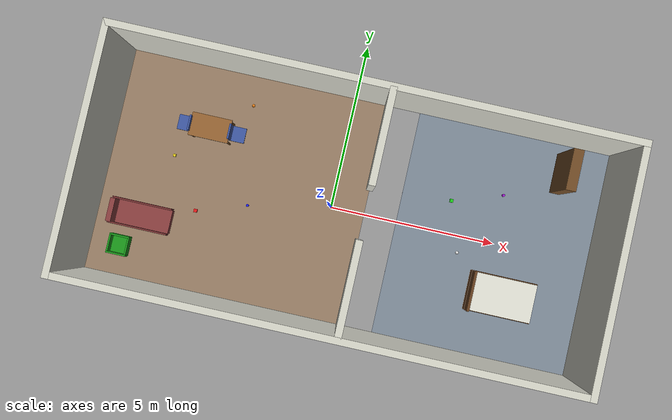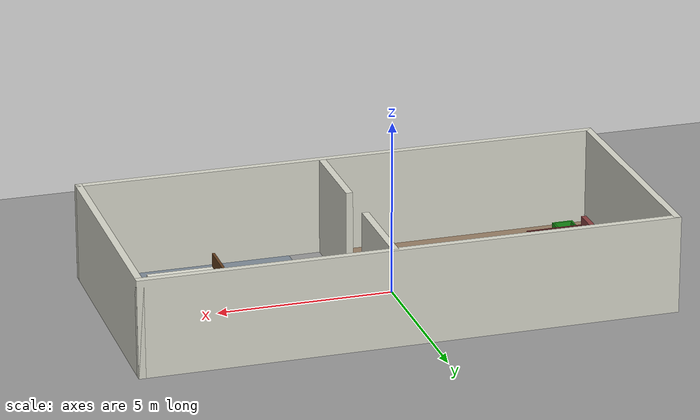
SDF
<?xml version="1.0" ?>
<sdf version="1.8">
  <world name="home_world">

    <!-- Physics -->
    <gravity>0 0 -9.81</gravity>
    <physics name="default_physics" type="ode">
      <max_step_size>0.001</max_step_size>
      <real_time_factor>1.0</real_time_factor>
      <real_time_update_rate>1000</real_time_update_rate>
      <ode>
        <solver>
          <type>quick</type>
          <iters>50</iters>
        </solver>
      </ode>
    </physics>

    <!-- Scene / Ambient lighting -->
    <scene>
      <ambient>0.4 0.4 0.4 1</ambient>
      <background>0.7 0.7 0.7 1</background>
      <shadows>true</shadows>
    </scene>

    <!-- Directional sun light -->
    <light type="directional" name="sun">
      <cast_shadows>true</cast_shadows>
      <pose>0 0 10 0 0 0</pose>
      <diffuse>0.8 0.8 0.8 1</diffuse>
      <specular>0.2 0.2 0.2 1</specular>
      <direction>-0.5 0.1 -0.9</direction>
    </light>

    <!-- Required plugins -->
    <plugin filename="gz-sim-physics-system" name="gz::sim::systems::Physics"/>
    <plugin filename="gz-sim-scene-broadcaster-system" name="gz::sim::systems::SceneBroadcaster"/>
    <plugin filename="gz-sim-sensors-system" name="gz::sim::systems::Sensors"/>
    <plugin filename="gz-sim-contact-system" name="gz::sim::systems::Contact"/>
    <plugin filename="gz-sim-user-commands-system" name="gz::sim::systems::UserCommands"/>

    <!-- ============================================================
         GROUND PLANE
    ============================================================ -->
    <model name="ground_plane">
      <static>true</static>
      <link name="link">
        <collision name="collision">
          <geometry>
            <plane>
              <normal>0 0 1</normal>
              <size>50 50</size>
            </plane>
          </geometry>
          <surface>
            <friction>
              <ode>
                <mu>0.8</mu>
                <mu2>0.8</mu2>
              </ode>
            </friction>
          </surface>
        </collision>
        <visual name="visual">
          <geometry>
            <plane>
              <normal>0 0 1</normal>
              <size>50 50</size>
            </plane>
          </geometry>
          <material>
            <ambient>0.6 0.6 0.6 1</ambient>
            <diffuse>0.6 0.6 0.6 1</diffuse>
          </material>
        </visual>
      </link>
    </model>

    <!-- ============================================================
         ROOM 1 FLOOR TILE (living room) — centred at (-3, 0)
    ============================================================ -->
    <model name="room1_floor">
      <static>true</static>
      <pose>-3 0 0.001 0 0 0</pose>
      <link name="link">
        <visual name="visual">
          <geometry><box><size>8 7 0.001</size></box></geometry>
          <material>
            <ambient>0.55 0.45 0.35 1</ambient>
            <diffuse>0.60 0.50 0.40 1</diffuse>
          </material>
        </visual>
      </link>
    </model>

    <!-- ============================================================
         ROOM 2 FLOOR TILE (bedroom) — centred at (5, 0)
    ============================================================ -->
    <model name="room2_floor">
      <static>true</static>
      <pose>5 0 0.001 0 0 0</pose>
      <link name="link">
        <visual name="visual">
          <geometry><box><size>6 7 0.001</size></box></geometry>
          <material>
            <ambient>0.45 0.50 0.55 1</ambient>
            <diffuse>0.50 0.55 0.60 1</diffuse>
          </material>
        </visual>
      </link>
    </model>

    <!-- South outer wall (y = -3.5), full width -->
    <model name="wall_south">
      <static>true</static>
      <pose>0.5 -3.5 1.4 0 0 0</pose>
      <link name="link">
        <collision name="col"><geometry><box><size>15.2 0.2 2.8</size></box></geometry></collision>
        <visual name="vis">
          <geometry><box><size>15.2 0.2 2.8</size></box></geometry>
          <material><ambient>0.85 0.85 0.80 1</ambient><diffuse>0.85 0.85 0.80 1</diffuse></material>
        </visual>
      </link>
    </model>

    <!-- North outer wall (y = 3.5), full width -->
    <model name="wall_north">
      <static>true</static>
      <pose>0.5 3.5 1.4 0 0 0</pose>
      <link name="link">
        <collision name="col"><geometry><box><size>15.2 0.2 2.8</size></box></geometry></collision>
        <visual name="vis">
          <geometry><box><size>15.2 0.2 2.8</size></box></geometry>
          <material><ambient>0.85 0.85 0.80 1</ambient><diffuse>0.85 0.85 0.80 1</diffuse></material>
        </visual>
      </link>
    </model>

    <!-- West outer wall (x = -7) -->
    <model name="wall_west">
      <static>true</static>
      <pose>-7 0 1.4 0 0 0</pose>
      <link name="link">
        <collision name="col"><geometry><box><size>0.2 7.2 2.8</size></box></geometry></collision>
        <visual name="vis">
          <geometry><box><size>0.2 7.2 2.8</size></box></geometry>
          <material><ambient>0.85 0.85 0.80 1</ambient><diffuse>0.85 0.85 0.80 1</diffuse></material>
        </visual>
      </link>
    </model>

    <!-- East outer wall (x = 8) -->
    <model name="wall_east">
      <static>true</static>
      <pose>8 0 1.4 0 0 0</pose>
      <link name="link">
        <collision name="col"><geometry><box><size>0.2 7.2 2.8</size></box></geometry></collision>
        <visual name="vis">
          <geometry><box><size>0.2 7.2 2.8</size></box></geometry>
          <material><ambient>0.85 0.85 0.80 1</ambient><diffuse>0.85 0.85 0.80 1</diffuse></material>
        </visual>
      </link>
    </model>

    <!-- Interior wall segment north of doorway (x=1, y from 0.75 to 3.5) -->
    <model name="wall_interior_north">
      <static>true</static>
      <pose>1 2.125 1.4 0 0 0</pose>
      <link name="link">
        <collision name="col"><geometry><box><size>0.2 2.75 2.8</size></box></geometry></collision>
        <visual name="vis">
          <geometry><box><size>0.2 2.75 2.8</size></box></geometry>
          <material><ambient>0.85 0.85 0.80 1</ambient><diffuse>0.85 0.85 0.80 1</diffuse></material>
        </visual>
      </link>
    </model>

    <!-- Interior wall segment south of doorway (x=1, y from -3.5 to -0.75) -->
    <model name="wall_interior_south">
      <static>true</static>
      <pose>1 -2.125 1.4 0 0 0</pose>
      <link name="link">
        <collision name="col"><geometry><box><size>0.2 2.75 2.8</size></box></geometry></collision>
        <visual name="vis">
          <geometry><box><size>0.2 2.75 2.8</size></box></geometry>
          <material><ambient>0.85 0.85 0.80 1</ambient><diffuse>0.85 0.85 0.80 1</diffuse></material>
        </visual>
      </link>
    </model>

    <!-- ============================================================
         FURNITURE — Room 1 (Living Room)
    ============================================================ -->

    <!-- Table top -->
    <model name="table">
      <static>true</static>
      <pose>-4 1.5 0.75 0 0 0</pose>
      <link name="link">
        <collision name="top_col"><geometry><box><size>1.2 0.7 0.05</size></box></geometry></collision>
        <visual name="top_vis">
          <geometry><box><size>1.2 0.7 0.05</size></box></geometry>
          <material><ambient>0.55 0.35 0.15 1</ambient><diffuse>0.60 0.40 0.20 1</diffuse></material>
        </visual>
        <!-- Leg FL -->
        <visual name="leg_fl">
          <pose>0.55 0.30 -0.375 0 0 0</pose>
          <geometry><cylinder><radius>0.03</radius><length>0.75</length></cylinder></geometry>
          <material><ambient>0.4 0.25 0.1 1</ambient><diffuse>0.4 0.25 0.1 1</diffuse></material>
        </visual>
        <!-- Leg FR -->
        <visual name="leg_fr">
          <pose>0.55 -0.30 -0.375 0 0 0</pose>
          <geometry><cylinder><radius>0.03</radius><length>0.75</length></cylinder></geometry>
          <material><ambient>0.4 0.25 0.1 1</ambient><diffuse>0.4 0.25 0.1 1</diffuse></material>
        </visual>
        <!-- Leg BL -->
        <visual name="leg_bl">
          <pose>-0.55 0.30 -0.375 0 0 0</pose>
          <geometry><cylinder><radius>0.03</radius><length>0.75</length></cylinder></geometry>
          <material><ambient>0.4 0.25 0.1 1</ambient><diffuse>0.4 0.25 0.1 1</diffuse></material>
        </visual>
        <!-- Leg BR -->
        <visual name="leg_br">
          <pose>-0.55 -0.30 -0.375 0 0 0</pose>
          <geometry><cylinder><radius>0.03</radius><length>0.75</length></cylinder></geometry>
          <material><ambient>0.4 0.25 0.1 1</ambient><diffuse>0.4 0.25 0.1 1</diffuse></material>
        </visual>
        <!-- Table collision legs (simplified) -->
        <collision name="legs_col">
          <pose>0 0 -0.375 0 0 0</pose>
          <geometry><box><size>1.2 0.7 0.75</size></box></geometry>
        </collision>
      </link>
    </model>

    <!-- Chair 1 -->
    <model name="chair1">
      <static>true</static>
      <pose>-3.2 1.5 0.45 0 0 0</pose>
      <link name="link">
        <collision name="seat_col"><geometry><box><size>0.45 0.45 0.05</size></box></geometry></collision>
        <visual name="seat">
          <geometry><box><size>0.45 0.45 0.05</size></box></geometry>
          <material><ambient>0.2 0.3 0.6 1</ambient><diffuse>0.25 0.35 0.65 1</diffuse></material>
        </visual>
        <visual name="backrest">
          <pose>-0.20 0 0.25 0 0 0</pose>
          <geometry><box><size>0.05 0.45 0.50</size></box></geometry>
          <material><ambient>0.2 0.3 0.6 1</ambient><diffuse>0.25 0.35 0.65 1</diffuse></material>
        </visual>
      </link>
    </model>

    <!-- Chair 2 -->
    <model name="chair2">
      <static>true</static>
      <pose>-4.8 1.5 0.45 0 0 3.14159</pose>
      <link name="link">
        <collision name="seat_col"><geometry><box><size>0.45 0.45 0.05</size></box></geometry></collision>
        <visual name="seat">
          <geometry><box><size>0.45 0.45 0.05</size></box></geometry>
          <material><ambient>0.2 0.3 0.6 1</ambient><diffuse>0.25 0.35 0.65 1</diffuse></material>
        </visual>
        <visual name="backrest">
          <pose>-0.20 0 0.25 0 0 0</pose>
          <geometry><box><size>0.05 0.45 0.50</size></box></geometry>
          <material><ambient>0.2 0.3 0.6 1</ambient><diffuse>0.25 0.35 0.65 1</diffuse></material>
        </visual>
      </link>
    </model>

    <!-- Couch (sofa) -->
    <model name="couch">
      <static>true</static>
      <pose>-5.5 -1.5 0.25 0 0 0</pose>
      <link name="link">
        <!-- Seat base -->
        <collision name="seat_col"><geometry><box><size>1.8 0.7 0.25</size></box></geometry></collision>
        <visual name="seat">
          <geometry><box><size>1.8 0.7 0.25</size></box></geometry>
          <material><ambient>0.5 0.2 0.2 1</ambient><diffuse>0.55 0.25 0.25 1</diffuse></material>
        </visual>
        <!-- Backrest -->
        <visual name="back">
          <pose>-0.80 0 0.30 0 0 0</pose>
          <geometry><box><size>0.15 0.7 0.55</size></box></geometry>
          <material><ambient>0.5 0.2 0.2 1</ambient><diffuse>0.55 0.25 0.25 1</diffuse></material>
        </visual>
        <!-- Left armrest -->
        <visual name="arm_l">
          <pose>0 0.375 0.15 0 0 0</pose>
          <geometry><box><size>1.8 0.05 0.30</size></box></geometry>
          <material><ambient>0.45 0.18 0.18 1</ambient><diffuse>0.45 0.18 0.18 1</diffuse></material>
        </visual>
        <!-- Right armrest -->
        <visual name="arm_r">
          <pose>0 -0.375 0.15 0 0 0</pose>
          <geometry><box><size>1.8 0.05 0.30</size></box></geometry>
          <material><ambient>0.45 0.18 0.18 1</ambient><diffuse>0.45 0.18 0.18 1</diffuse></material>
        </visual>
      </link>
    </model>

    <!-- ============================================================
         FURNITURE — Room 2 (Bedroom)
    ============================================================ -->

    <!-- Shelf / bookcase -->
    <model name="shelf">
      <static>true</static>
      <pose>6.5 2.5 0.9 0 0 0</pose>
      <link name="link">
        <!-- Outer frame -->
        <collision name="frame_col"><geometry><box><size>0.3 1.2 1.8</size></box></geometry></collision>
        <visual name="frame">
          <geometry><box><size>0.3 1.2 1.8</size></box></geometry>
          <material><ambient>0.4 0.25 0.1 1</ambient><diffuse>0.45 0.30 0.15 1</diffuse></material>
        </visual>
        <!-- Shelf panel 1 -->
        <visual name="shelf1">
          <pose>0 0 -0.5 0 0 0</pose>
          <geometry><box><size>0.28 1.18 0.03</size></box></geometry>
          <material><ambient>0.5 0.35 0.15 1</ambient><diffuse>0.5 0.35 0.15 1</diffuse></material>
        </visual>
        <!-- Shelf panel 2 -->
        <visual name="shelf2">
          <pose>0 0 0.0 0 0 0</pose>
          <geometry><box><size>0.28 1.18 0.03</size></box></geometry>
          <material><ambient>0.5 0.35 0.15 1</ambient><diffuse>0.5 0.35 0.15 1</diffuse></material>
        </visual>
        <!-- Shelf panel 3 -->
        <visual name="shelf3">
          <pose>0 0 0.5 0 0 0</pose>
          <geometry><box><size>0.28 1.18 0.03</size></box></geometry>
          <material><ambient>0.5 0.35 0.15 1</ambient><diffuse>0.5 0.35 0.15 1</diffuse></material>
        </visual>
      </link>
    </model>

    <!-- Bed frame -->
    <model name="bed">
      <static>true</static>
      <pose>5.5 -1.5 0.25 0 0 0</pose>
      <link name="link">
        <collision name="col"><geometry><box><size>2.0 1.2 0.3</size></box></geometry></collision>
        <visual name="frame">
          <geometry><box><size>2.0 1.2 0.3</size></box></geometry>
          <material><ambient>0.35 0.20 0.10 1</ambient><diffuse>0.40 0.25 0.12 1</diffuse></material>
        </visual>
        <!-- Mattress -->
        <visual name="mattress">
          <pose>0 0 0.18 0 0 0</pose>
          <geometry><box><size>1.95 1.15 0.15</size></box></geometry>
          <material><ambient>0.9 0.9 0.85 1</ambient><diffuse>0.9 0.9 0.85 1</diffuse></material>
        </visual>
        <!-- Headboard -->
        <visual name="headboard">
          <pose>-0.95 0 0.35 0 0 0</pose>
          <geometry><box><size>0.08 1.2 0.60</size></box></geometry>
          <material><ambient>0.35 0.20 0.10 1</ambient><diffuse>0.40 0.25 0.12 1</diffuse></material>
        </visual>
      </link>
    </model>

    <model name="collection_box">
      <static>true</static>
      <pose>-6 -2.5 0.0 0 0 0</pose>
      <link name="link">
        <!-- Bottom -->
        <collision name="bottom_col">
          <pose>0 0 0.025 0 0 0</pose>
          <geometry><box><size>0.6 0.6 0.05</size></box></geometry>
        </collision>
        <visual name="bottom">
          <pose>0 0 0.025 0 0 0</pose>
          <geometry><box><size>0.6 0.6 0.05</size></box></geometry>
          <material><ambient>0.1 0.5 0.1 1</ambient><diffuse>0.1 0.6 0.1 1</diffuse></material>
        </visual>
        <!-- Front wall -->
        <collision name="front_col">
          <pose>0 -0.275 0.175 0 0 0</pose>
          <geometry><box><size>0.6 0.05 0.30</size></box></geometry>
        </collision>
        <visual name="front">
          <pose>0 -0.275 0.175 0 0 0</pose>
          <geometry><box><size>0.6 0.05 0.30</size></box></geometry>
          <material><ambient>0.1 0.5 0.1 1</ambient><diffuse>0.1 0.6 0.1 1</diffuse></material>
        </visual>
        <!-- Back wall -->
        <collision name="back_col">
          <pose>0 0.275 0.175 0 0 0</pose>
          <geometry><box><size>0.6 0.05 0.30</size></box></geometry>
        </collision>
        <visual name="back">
          <pose>0 0.275 0.175 0 0 0</pose>
          <geometry><box><size>0.6 0.05 0.30</size></box></geometry>
          <material><ambient>0.1 0.5 0.1 1</ambient><diffuse>0.1 0.6 0.1 1</diffuse></material>
        </visual>
        <!-- Left wall -->
        <collision name="left_col">
          <pose>-0.275 0 0.175 0 0 0</pose>
          <geometry><box><size>0.05 0.6 0.30</size></box></geometry>
        </collision>
        <visual name="left">
          <pose>-0.275 0 0.175 0 0 0</pose>
          <geometry><box><size>0.05 0.6 0.30</size></box></geometry>
          <material><ambient>0.1 0.5 0.1 1</ambient><diffuse>0.1 0.6 0.1 1</diffuse></material>
        </visual>
        <!-- Right wall -->
        <collision name="right_col">
          <pose>0.275 0 0.175 0 0 0</pose>
          <geometry><box><size>0.05 0.6 0.30</size></box></geometry>
        </collision>
        <visual name="right">
          <pose>0.275 0 0.175 0 0 0</pose>
          <geometry><box><size>0.05 0.6 0.30</size></box></geometry>
          <material><ambient>0.1 0.5 0.1 1</ambient><diffuse>0.1 0.6 0.1 1</diffuse></material>
        </visual>
      </link>
    </model>

    <!-- ============================================================
         SMALL PICKUP OBJECTS (7 objects across both rooms)
    ============================================================ -->

    <!-- Object 1: red block in Room 1 -->
    <model name="obj_block1">
      <pose>-4 -1.0 0.05 0 0 0</pose>
      <link name="link">
        <inertial><mass>0.1</mass><inertia><ixx>0.000042</ixx><ixy>0</ixy><ixz>0</ixz><iyy>0.000042</iyy><iyz>0</iyz><izz>0.000042</izz></inertia></inertial>
        <collision name="col"><geometry><box><size>0.1 0.1 0.1</size></box></geometry><surface><friction><ode><mu>0.7</mu><mu2>0.7</mu2></ode></friction></surface></collision>
        <visual name="vis"><geometry><box><size>0.1 0.1 0.1</size></box></geometry><material><ambient>0.8 0.1 0.1 1</ambient><diffuse>0.9 0.1 0.1 1</diffuse></material></visual>
      </link>
    </model>

    <!-- Object 2: blue cylinder in Room 1 -->
    <model name="obj_can1">
      <pose>-2.5 -0.5 0.06 0 0 0</pose>
      <link name="link">
        <inertial><mass>0.15</mass><inertia><ixx>0.000094</ixx><ixy>0</ixy><ixz>0</ixz><iyy>0.000094</iyy><iyz>0</iyz><izz>0.000056</izz></inertia></inertial>
        <collision name="col"><geometry><cylinder><radius>0.04</radius><length>0.12</length></cylinder></geometry><surface><friction><ode><mu>0.6</mu><mu2>0.6</mu2></ode></friction></surface></collision>
        <visual name="vis"><geometry><cylinder><radius>0.04</radius><length>0.12</length></cylinder></geometry><material><ambient>0.1 0.1 0.8 1</ambient><diffuse>0.1 0.1 0.9 1</diffuse></material></visual>
      </link>
    </model>

    <!-- Object 3: yellow block in Room 1 -->
    <model name="obj_block2">
      <pose>-5 0.5 0.05 0 0 0</pose>
      <link name="link">
        <inertial><mass>0.08</mass><inertia><ixx>0.000027</ixx><ixy>0</ixy><ixz>0</ixz><iyy>0.000027</iyy><iyz>0</iyz><izz>0.000027</izz></inertia></inertial>
        <collision name="col"><geometry><box><size>0.08 0.08 0.08</size></box></geometry><surface><friction><ode><mu>0.7</mu><mu2>0.7</mu2></ode></friction></surface></collision>
        <visual name="vis"><geometry><box><size>0.08 0.08 0.08</size></box></geometry><material><ambient>0.9 0.8 0.1 1</ambient><diffuse>0.9 0.8 0.1 1</diffuse></material></visual>
      </link>
    </model>

    <!-- Object 4: orange sphere in Room 1 -->
    <model name="obj_ball1">
      <pose>-3 2.5 0.05 0 0 0</pose>
      <link name="link">
        <inertial><mass>0.05</mass><inertia><ixx>0.000010</ixx><ixy>0</ixy><ixz>0</ixz><iyy>0.000010</iyy><iyz>0</iyz><izz>0.000010</izz></inertia></inertial>
        <collision name="col"><geometry><sphere><radius>0.05</radius></sphere></geometry><surface><friction><ode><mu>0.5</mu><mu2>0.5</mu2></ode></friction></surface></collision>
        <visual name="vis"><geometry><sphere><radius>0.05</radius></sphere></geometry><material><ambient>0.9 0.5 0.1 1</ambient><diffuse>0.9 0.5 0.1 1</diffuse></material></visual>
      </link>
    </model>

    <!-- Object 5: green block in Room 2 -->
    <model name="obj_block3">
      <pose>3.5 1.0 0.05 0 0 0</pose>
      <link name="link">
        <inertial><mass>0.12</mass><inertia><ixx>0.000048</ixx><ixy>0</ixy><ixz>0</ixz><iyy>0.000048</iyy><iyz>0</iyz><izz>0.000048</izz></inertia></inertial>
        <collision name="col"><geometry><box><size>0.1 0.1 0.1</size></box></geometry><surface><friction><ode><mu>0.7</mu><mu2>0.7</mu2></ode></friction></surface></collision>
        <visual name="vis"><geometry><box><size>0.1 0.1 0.1</size></box></geometry><material><ambient>0.1 0.7 0.1 1</ambient><diffuse>0.1 0.8 0.1 1</diffuse></material></visual>
      </link>
    </model>

    <!-- Object 6: purple cylinder in Room 2 -->
    <model name="obj_can2">
      <pose>5 1.5 0.06 0 0 0</pose>
      <link name="link">
        <inertial><mass>0.20</mass><inertia><ixx>0.000125</ixx><ixy>0</ixy><ixz>0</ixz><iyy>0.000125</iyy><iyz>0</iyz><izz>0.000075</izz></inertia></inertial>
        <collision name="col"><geometry><cylinder><radius>0.04</radius><length>0.12</length></cylinder></geometry><surface><friction><ode><mu>0.6</mu><mu2>0.6</mu2></ode></friction></surface></collision>
        <visual name="vis"><geometry><cylinder><radius>0.04</radius><length>0.12</length></cylinder></geometry><material><ambient>0.5 0.1 0.7 1</ambient><diffuse>0.6 0.1 0.8 1</diffuse></material></visual>
      </link>
    </model>

    <!-- Object 7: white sphere in Room 2 -->
    <model name="obj_ball2">
      <pose>4 -0.5 0.05 0 0 0</pose>
      <link name="link">
        <inertial><mass>0.06</mass><inertia><ixx>0.000012</ixx><ixy>0</ixy><ixz>0</ixz><iyy>0.000012</iyy><iyz>0</iyz><izz>0.000012</izz></inertia></inertial>
        <collision name="col"><geometry><sphere><radius>0.05</radius></sphere></geometry><surface><friction><ode><mu>0.5</mu><mu2>0.5</mu2></ode></friction></surface></collision>
        <visual name="vis"><geometry><sphere><radius>0.05</radius></sphere></geometry><material><ambient>0.9 0.9 0.9 1</ambient><diffuse>0.9 0.9 0.9 1</diffuse></material></visual>
      </link>
    </model>

  </world>
</sdf>
